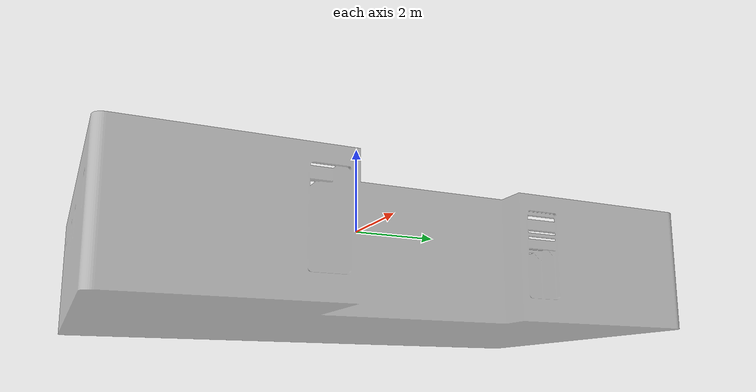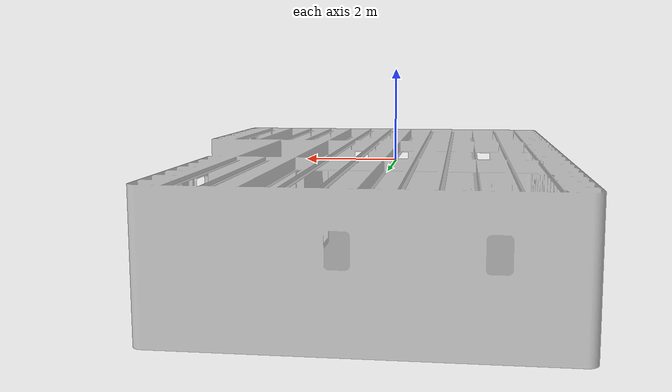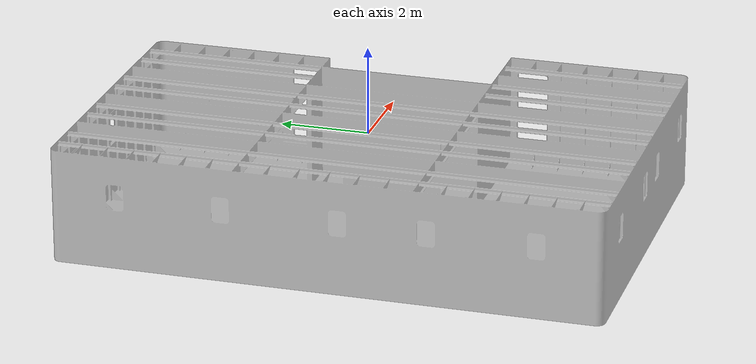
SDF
<?xml version="1.0" ?>
<sdf version="1.4">
  <model name="ship_interior_without_ceiling">
    <static>true</static>
    <link name="link">
      <inertial>
        <mass>1000</mass>
      </inertial>
      <collision name="collision">
        <geometry>
          <mesh>
            <uri>model://ship_interior_without_ceiling/meshes/ship_interior_without_ceiling.stl</uri>
          </mesh>
        </geometry>
      </collision>
      <visual name="visual">
        <transparency>0.2</transparency>
        <geometry>
          <mesh>
            <uri>model://ship_interior_without_ceiling/meshes/ship_interior_without_ceiling.stl</uri>
          </mesh>
        </geometry>
      </visual>
    </link>
  </model>
</sdf>
